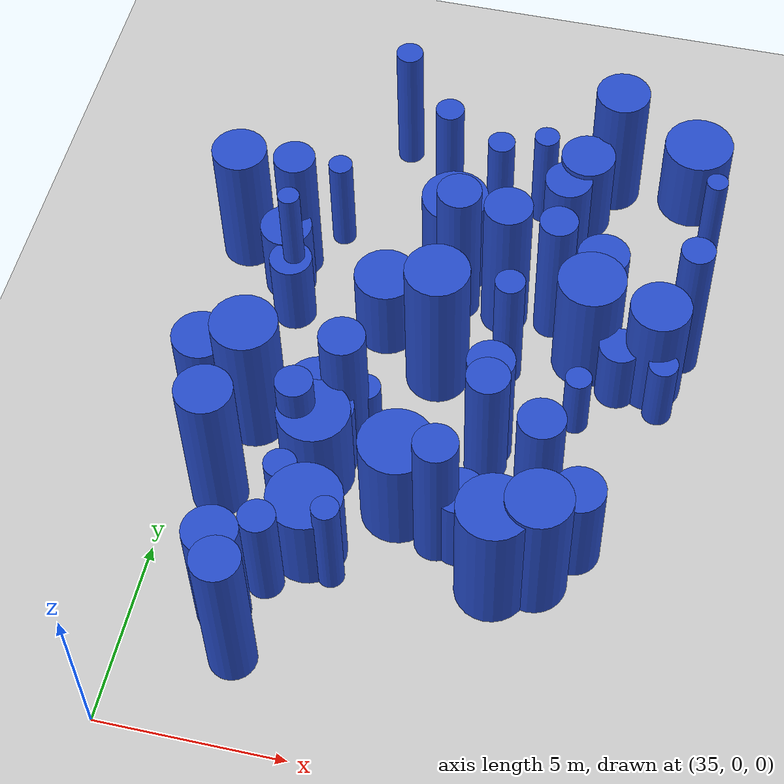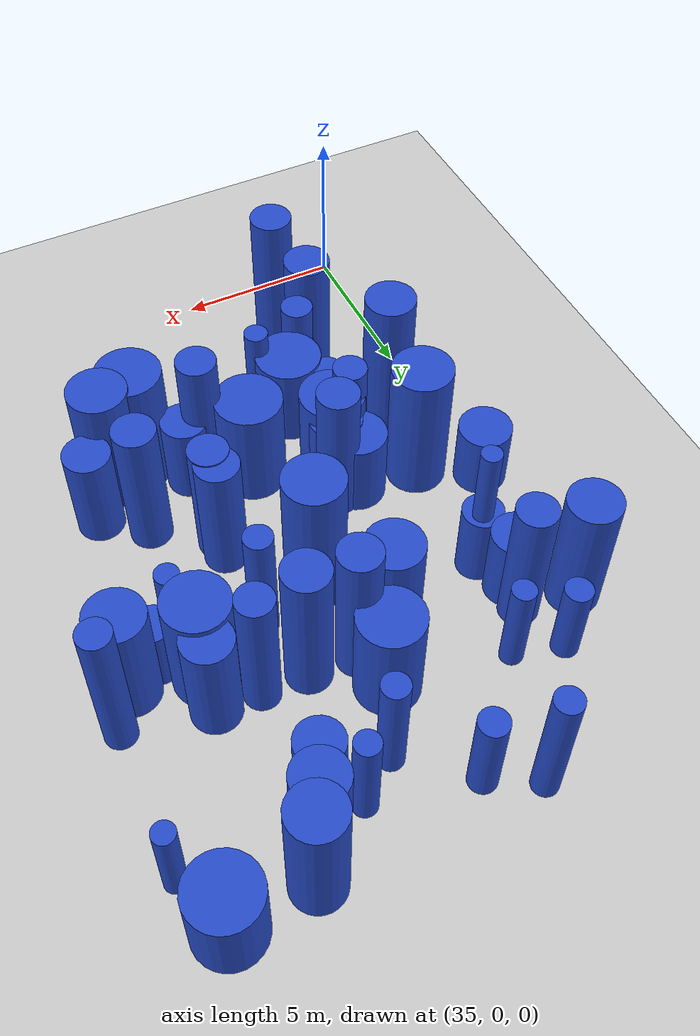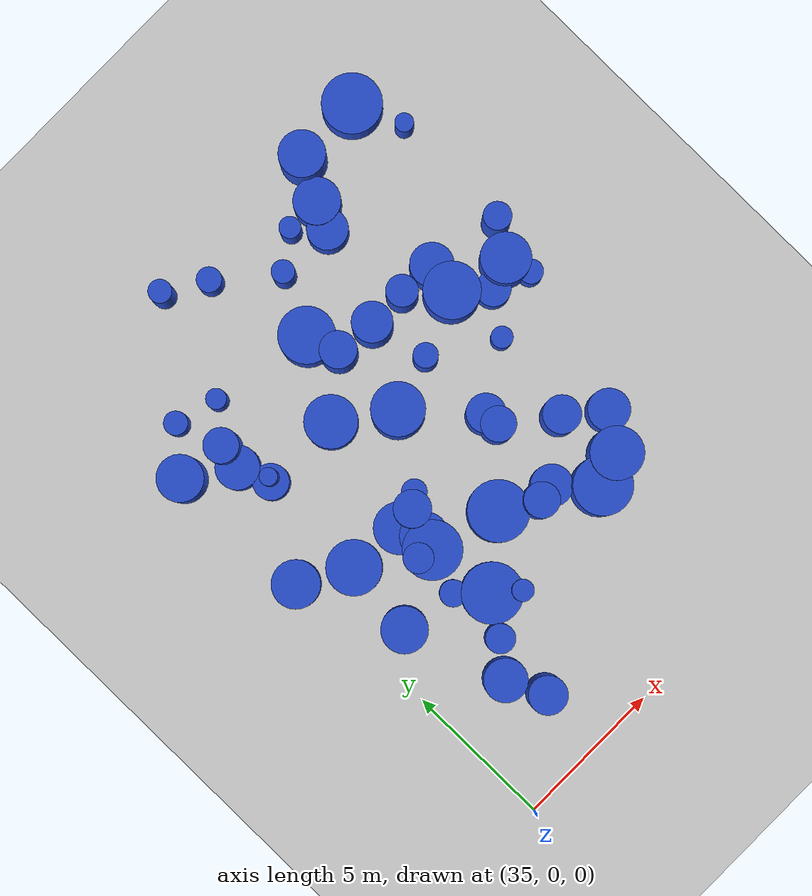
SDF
<sdf version="1.6">
 <world name="default">
  <model name="ground_plane">
   <static>1</static>
   <link name="link">
    <collision name="collision">
     <geometry><plane><normal>0 0 1</normal><size>100 100</size></plane></geometry>
     <surface><friction><ode><mu>100</mu><mu2>50</mu2></ode></friction></surface>
    </collision>
    <visual name="visual">
     <cast_shadows>0</cast_shadows>
     <geometry><plane><normal>0 0 1</normal><size>100 100</size></plane></geometry>
     <material>
      <script><uri>file://media/materials/scripts/gazebo.material</uri><name>Gazebo/Grey</name></script>
     </material>
    </visual>
   </link>
  </model>
  <model name="9">
   <static>0</static>
   <link name="link">
    <inertial>
     <mass>2</mass>
     <inertia><ixx>1.27297</ixx><ixy>0</ixy><ixz>0</ixz><iyy>1.27297</iyy><iyz>0</iyz><izz>0.516849</izz></inertia>
    </inertial>
    <collision name="collision">
     <geometry><cylinder><length>2.46725</length><radius>0.718922</radius></cylinder></geometry>
     <surface><contact><collide_without_contact>1</collide_without_contact></contact></surface>
    </collision>
    <visual name="visual">
     <geometry><cylinder><length>2.46725</length><radius>0.718922</radius></cylinder></geometry>
     <material>
      <script><uri>file://media/materials/scripts/gazebo.material</uri><name>Gazebo/Blue</name></script>
     </material>
    </visual>
    <gravity>0</gravity>
   </link>
   <pose>36.1886 14.3863 1.23362 0 -0 0</pose>
  </model>
  <model name="14">
   <static>0</static>
   <link name="link">
    <inertial>
     <mass>2</mass>
     <inertia><ixx>2.91047</ixx><ixy>0</ixy><ixz>0</ixz><iyy>2.91047</iyy><iyz>0</iyz><izz>0.499162</izz></inertia>
    </inertial>
    <collision name="collision">
     <geometry><cylinder><length>3.99567</length><radius>0.706514</radius></cylinder></geometry>
     <surface><contact><collide_without_contact>1</collide_without_contact></contact></surface>
    </collision>
    <visual name="visual">
     <geometry><cylinder><length>3.99567</length><radius>0.706514</radius></cylinder></geometry>
     <material>
      <script><uri>file://media/materials/scripts/gazebo.material</uri><name>Gazebo/Blue</name></script>
     </material>
    </visual>
    <gravity>0</gravity>
   </link>
   <pose>37.3368 3.64907 1.99783 0 -0 0</pose>
  </model>
  <model name="22">
   <static>0</static>
   <link name="link">
    <inertial>
     <mass>2</mass>
     <inertia><ixx>1.57924</ixx><ixy>0</ixy><ixz>0</ixz><iyy>1.57924</iyy><iyz>0</iyz><izz>0.59029</izz></inertia>
    </inertial>
    <collision name="collision">
     <geometry><cylinder><length>2.77571</length><radius>0.768303</radius></cylinder></geometry>
     <surface><contact><collide_without_contact>1</collide_without_contact></contact></surface>
    </collision>
    <visual name="visual">
     <geometry><cylinder><length>2.77571</length><radius>0.768303</radius></cylinder></geometry>
     <material>
      <script><uri>file://media/materials/scripts/gazebo.material</uri><name>Gazebo/Blue</name></script>
     </material>
    </visual>
    <gravity>0</gravity>
   </link>
   <pose>43.9591 18.4852 1.38785 0 -0 0</pose>
  </model>
  <model name="37">
   <static>0</static>
   <link name="link">
    <inertial>
     <mass>2</mass>
     <inertia><ixx>1.40064</ixx><ixy>0</ixy><ixz>0</ixz><iyy>1.40064</iyy><iyz>0</iyz><izz>0.715011</izz></inertia>
    </inertial>
    <collision name="collision">
     <geometry><cylinder><length>2.50176</length><radius>0.845583</radius></cylinder></geometry>
     <surface><contact><collide_without_contact>1</collide_without_contact></contact></surface>
    </collision>
    <visual name="visual">
     <geometry><cylinder><length>2.50176</length><radius>0.845583</radius></cylinder></geometry>
     <material>
      <script><uri>file://media/materials/scripts/gazebo.material</uri><name>Gazebo/Blue</name></script>
     </material>
    </visual>
    <gravity>0</gravity>
   </link>
   <pose>38.4172 9.37247 1.25088 0 -0 0</pose>
  </model>
  <model name="43">
   <static>0</static>
   <link name="link">
    <inertial>
     <mass>2</mass>
     <inertia><ixx>1.8726</ixx><ixy>0</ixy><ixz>0</ixz><iyy>1.8726</iyy><iyz>0</iyz><izz>0.124585</izz></inertia>
    </inertial>
    <collision name="collision">
     <geometry><cylinder><length>3.29574</length><radius>0.352966</radius></cylinder></geometry>
     <surface><contact><collide_without_contact>1</collide_without_contact></contact></surface>
    </collision>
    <visual name="visual">
     <geometry><cylinder><length>3.29574</length><radius>0.352966</radius></cylinder></geometry>
     <material>
      <script><uri>file://media/materials/scripts/gazebo.material</uri><name>Gazebo/Blue</name></script>
     </material>
    </visual>
    <gravity>0</gravity>
   </link>
   <pose>42.7488 18.4765 1.64787 0 -0 0</pose>
  </model>
  <model name="56">
   <static>0</static>
   <link name="link">
    <inertial>
     <mass>2</mass>
     <inertia><ixx>2.77614</ixx><ixy>0</ixy><ixz>0</ixz><iyy>2.77614</iyy><iyz>0</iyz><izz>0.245795</izz></inertia>
    </inertial>
    <collision name="collision">
     <geometry><cylinder><length>3.98992</length><radius>0.495777</radius></cylinder></geometry>
     <surface><contact><collide_without_contact>1</collide_without_contact></contact></surface>
    </collision>
    <visual name="visual">
     <geometry><cylinder><length>3.98992</length><radius>0.495777</radius></cylinder></geometry>
     <material>
      <script><uri>file://media/materials/scripts/gazebo.material</uri><name>Gazebo/Blue</name></script>
     </material>
    </visual>
    <gravity>0</gravity>
   </link>
   <pose>38.1551 8.28818 1.99496 0 -0 0</pose>
  </model>
  <model name="60">
   <static>0</static>
   <link name="link">
    <inertial>
     <mass>2</mass>
     <inertia><ixx>2.52957</ixx><ixy>0</ixy><ixz>0</ixz><iyy>2.52957</iyy><iyz>0</iyz><izz>0.676676</izz></inertia>
    </inertial>
    <collision name="collision">
     <geometry><cylinder><length>3.62593</length><radius>0.822603</radius></cylinder></geometry>
     <surface><contact><collide_without_contact>1</collide_without_contact></contact></surface>
    </collision>
    <visual name="visual">
     <geometry><cylinder><length>3.62593</length><radius>0.822603</radius></cylinder></geometry>
     <material>
      <script><uri>file://media/materials/scripts/gazebo.material</uri><name>Gazebo/Blue</name></script>
     </material>
    </visual>
    <gravity>0</gravity>
   </link>
   <pose>46.8205 12.9395 1.81297 0 -0 0</pose>
  </model>
  <model name="84">
   <static>0</static>
   <link name="link">
    <inertial>
     <mass>2</mass>
     <inertia><ixx>1.40467</ixx><ixy>0</ixy><ixz>0</ixz><iyy>1.40467</iyy><iyz>0</iyz><izz>0.752602</izz></inertia>
    </inertial>
    <collision name="collision">
     <geometry><cylinder><length>2.484</length><radius>0.867526</radius></cylinder></geometry>
     <surface><contact><collide_without_contact>1</collide_without_contact></contact></surface>
    </collision>
    <visual name="visual">
     <geometry><cylinder><length>2.484</length><radius>0.867526</radius></cylinder></geometry>
     <material>
      <script><uri>file://media/materials/scripts/gazebo.material</uri><name>Gazebo/Blue</name></script>
     </material>
    </visual>
    <gravity>0</gravity>
   </link>
   <pose>39.2948 13.2887 1.242 0 -0 0</pose>
  </model>
  <model name="85">
   <static>0</static>
   <link name="link">
    <inertial>
     <mass>2</mass>
     <inertia><ixx>3.49017</ixx><ixy>0</ixy><ixz>0</ixz><iyy>3.49017</iyy><iyz>0</iyz><izz>0.329145</izz></inertia>
    </inertial>
    <collision name="collision">
     <geometry><cylinder><length>4.46694</length><radius>0.573711</radius></cylinder></geometry>
     <surface><contact><collide_without_contact>1</collide_without_contact></contact></surface>
    </collision>
    <visual name="visual">
     <geometry><cylinder><length>4.46694</length><radius>0.573711</radius></cylinder></geometry>
     <material>
      <script><uri>file://media/materials/scripts/gazebo.material</uri><name>Gazebo/Blue</name></script>
     </material>
    </visual>
    <gravity>0</gravity>
   </link>
   <pose>36.3377 15.1662 2.23347 0 -0 0</pose>
  </model>
  <model name="87">
   <static>0</static>
   <link name="link">
    <inertial>
     <mass>2</mass>
     <inertia><ixx>3.67503</ixx><ixy>0</ixy><ixz>0</ixz><iyy>3.67503</iyy><iyz>0</iyz><izz>0.375093</izz></inertia>
    </inertial>
    <collision name="collision">
     <geometry><cylinder><length>4.57438</length><radius>0.612449</radius></cylinder></geometry>
     <surface><contact><collide_without_contact>1</collide_without_contact></contact></surface>
    </collision>
    <visual name="visual">
     <geometry><cylinder><length>4.57438</length><radius>0.612449</radius></cylinder></geometry>
     <material>
      <script><uri>file://media/materials/scripts/gazebo.material</uri><name>Gazebo/Blue</name></script>
     </material>
    </visual>
    <gravity>0</gravity>
   </link>
   <pose>39.1185 9.50493 2.28719 0 -0 0</pose>
  </model>
  <model name="92">
   <static>0</static>
   <link name="link">
    <inertial>
     <mass>2</mass>
     <inertia><ixx>1.49245</ixx><ixy>0</ixy><ixz>0</ixz><iyy>1.49245</iyy><iyz>0</iyz><izz>0.959766</izz></inertia>
    </inertial>
    <collision name="collision">
     <geometry><cylinder><length>2.46483</length><radius>0.979676</radius></cylinder></geometry>
     <surface><contact><collide_without_contact>1</collide_without_contact></contact></surface>
    </collision>
    <visual name="visual">
     <geometry><cylinder><length>2.46483</length><radius>0.979676</radius></cylinder></geometry>
     <material>
      <script><uri>file://media/materials/scripts/gazebo.material</uri><name>Gazebo/Blue</name></script>
     </material>
    </visual>
    <gravity>0</gravity>
   </link>
   <pose>46.9538 19.8742 1.23241 0 -0 0</pose>
  </model>
  <model name="120">
   <static>0</static>
   <link name="link">
    <inertial>
     <mass>2</mass>
     <inertia><ixx>4.10675</ixx><ixy>0</ixy><ixz>0</ixz><iyy>4.10675</iyy><iyz>0</iyz><izz>0.365101</izz></inertia>
    </inertial>
    <collision name="collision">
     <geometry><cylinder><length>4.85234</length><radius>0.604236</radius></cylinder></geometry>
     <surface><contact><collide_without_contact>1</collide_without_contact></contact></surface>
    </collision>
    <visual name="visual">
     <geometry><cylinder><length>4.85234</length><radius>0.604236</radius></cylinder></geometry>
     <material>
      <script><uri>file://media/materials/scripts/gazebo.material</uri><name>Gazebo/Blue</name></script>
     </material>
    </visual>
    <gravity>0</gravity>
   </link>
   <pose>41.0366 14.6393 2.42617 0 -0 0</pose>
  </model>
  <model name="147">
   <static>0</static>
   <link name="link">
    <inertial>
     <mass>2</mass>
     <inertia>
      <ixx>0.898781</ixx>
      <ixy>0</ixy>
      <ixz>0</ixz>
      <iyy>0.898781</iyy>
      <iyz>0</iyz>
      <izz>0.140183</izz>
     </inertia>
    </inertial>
    <collision name="collision">
     <geometry><cylinder><length>2.22983</length><radius>0.37441</radius></cylinder></geometry>
     <surface><contact><collide_without_contact>1</collide_without_contact></contact></surface>
    </collision>
    <visual name="visual">
     <geometry><cylinder><length>2.22983</length><radius>0.37441</radius></cylinder></geometry>
     <material>
      <script><uri>file://media/materials/scripts/gazebo.material</uri><name>Gazebo/Blue</name></script>
     </material>
    </visual>
    <gravity>0</gravity>
   </link>
   <pose>41.1789 14.6443 1.11491 0 -0 0</pose>
  </model>
  <model name="149">
   <static>0</static>
   <link name="link">
    <inertial>
     <mass>2</mass>
     <inertia><ixx>3.46945</ixx><ixy>0</ixy><ixz>0</ixz><iyy>3.46945</iyy><iyz>0</iyz><izz>0.384951</izz></inertia>
    </inertial>
    <collision name="collision">
     <geometry><cylinder><length>4.43417</length><radius>0.620444</radius></cylinder></geometry>
     <surface><contact><collide_without_contact>1</collide_without_contact></contact></surface>
    </collision>
    <visual name="visual">
     <geometry><cylinder><length>4.43417</length><radius>0.620444</radius></cylinder></geometry>
     <material>
      <script><uri>file://media/materials/scripts/gazebo.material</uri><name>Gazebo/Blue</name></script>
     </material>
    </visual>
    <gravity>0</gravity>
   </link>
   <pose>44.509 8.23323 2.21708 0 -0 0</pose>
  </model>
  <model name="156">
   <static>0</static>
   <link name="link">
    <inertial>
     <mass>2</mass>
     <inertia><ixx>0.7634</ixx><ixy>0</ixy><ixz>0</ixz><iyy>0.7634</iyy><iyz>0</iyz><izz>0.172524</izz></inertia>
    </inertial>
    <collision name="collision">
     <geometry><cylinder><length>2.01565</length><radius>0.41536</radius></cylinder></geometry>
     <surface><contact><collide_without_contact>1</collide_without_contact></contact></surface>
    </collision>
    <visual name="visual">
     <geometry><cylinder><length>2.01565</length><radius>0.41536</radius></cylinder></geometry>
     <material>
      <script><uri>file://media/materials/scripts/gazebo.material</uri><name>Gazebo/Blue</name></script>
     </material>
    </visual>
    <gravity>0</gravity>
   </link>
   <pose>39.5638 9.85322 1.00782 0 -0 0</pose>
  </model>
  <model name="165">
   <static>0</static>
   <link name="link">
    <inertial>
     <mass>2</mass>
     <inertia><ixx>1.39954</ixx><ixy>0</ixy><ixz>0</ixz><iyy>1.39954</iyy><iyz>0</iyz><izz>0.624955</izz></inertia>
    </inertial>
    <collision name="collision">
     <geometry><cylinder><length>2.55389</length><radius>0.790541</radius></cylinder></geometry>
     <surface><contact><collide_without_contact>1</collide_without_contact></contact></surface>
    </collision>
    <visual name="visual">
     <geometry><cylinder><length>2.55389</length><radius>0.790541</radius></cylinder></geometry>
     <material>
      <script><uri>file://media/materials/scripts/gazebo.material</uri><name>Gazebo/Blue</name></script>
     </material>
    </visual>
    <gravity>0</gravity>
   </link>
   <pose>38.7771 8.64627 1.27694 0 -0 0</pose>
  </model>
  <model name="167">
   <static>0</static>
   <link name="link">
    <inertial>
     <mass>2</mass>
     <inertia><ixx>1.80978</ixx><ixy>0</ixy><ixz>0</ixz><iyy>1.80978</iyy><iyz>0</iyz><izz>0.471564</izz></inertia>
    </inertial>
    <collision name="collision">
     <geometry><cylinder><length>3.07311</length><radius>0.686705</radius></cylinder></geometry>
     <surface><contact><collide_without_contact>1</collide_without_contact></contact></surface>
    </collision>
    <visual name="visual">
     <geometry><cylinder><length>3.07311</length><radius>0.686705</radius></cylinder></geometry>
     <material>
      <script><uri>file://media/materials/scripts/gazebo.material</uri><name>Gazebo/Blue</name></script>
     </material>
    </visual>
    <gravity>0</gravity>
   </link>
   <pose>45.7058 7.27517 1.53655 0 -0 0</pose>
  </model>
  <model name="171">
   <static>0</static>
   <link name="link">
    <inertial>
     <mass>2</mass>
     <inertia><ixx>1.92743</ixx><ixy>0</ixy><ixz>0</ixz><iyy>1.92743</iyy><iyz>0</iyz><izz>0.23324</izz></inertia>
    </inertial>
    <collision name="collision">
     <geometry><cylinder><length>3.29618</length><radius>0.48295</radius></cylinder></geometry>
     <surface><contact><collide_without_contact>1</collide_without_contact></contact></surface>
    </collision>
    <visual name="visual">
     <geometry><cylinder><length>3.29618</length><radius>0.48295</radius></cylinder></geometry>
     <material>
      <script><uri>file://media/materials/scripts/gazebo.material</uri><name>Gazebo/Blue</name></script>
     </material>
    </visual>
    <gravity>0</gravity>
   </link>
   <pose>38.1547 4.66756 1.64809 0 -0 0</pose>
  </model>
  <model name="189">
   <static>0</static>
   <link name="link">
    <inertial>
     <mass>2</mass>
     <inertia><ixx>1.59975</ixx><ixy>0</ixy><ixz>0</ixz><iyy>1.59975</iyy><iyz>0</iyz><izz>0.168342</izz></inertia>
    </inertial>
    <collision name="collision">
     <geometry><cylinder><length>3.01554</length><radius>0.410295</radius></cylinder></geometry>
     <surface><contact><collide_without_contact>1</collide_without_contact></contact></surface>
    </collision>
    <visual name="visual">
     <geometry><cylinder><length>3.01554</length><radius>0.410295</radius></cylinder></geometry>
     <material>
      <script><uri>file://media/materials/scripts/gazebo.material</uri><name>Gazebo/Blue</name></script>
     </material>
    </visual>
    <gravity>0</gravity>
   </link>
   <pose>39.7948 19.1589 1.50777 0 -0 0</pose>
  </model>
  <model name="202">
   <static>0</static>
   <link name="link">
    <inertial>
     <mass>2</mass>
     <inertia><ixx>2.78119</ixx><ixy>0</ixy><ixz>0</ixz><iyy>2.78119</iyy><iyz>0</iyz><izz>0.165507</izz></inertia>
    </inertial>
    <collision name="collision">
     <geometry><cylinder><length>4.02376</length><radius>0.406826</radius></cylinder></geometry>
     <surface><contact><collide_without_contact>1</collide_without_contact></contact></surface>
    </collision>
    <visual name="visual">
     <geometry><cylinder><length>4.02376</length><radius>0.406826</radius></cylinder></geometry>
     <material>
      <script><uri>file://media/materials/scripts/gazebo.material</uri><name>Gazebo/Blue</name></script>
     </material>
    </visual>
    <gravity>0</gravity>
   </link>
   <pose>42.8502 12.5808 2.01188 0 -0 0</pose>
  </model>
  <model name="207">
   <static>0</static>
   <link name="link">
    <inertial>
     <mass>2</mass>
     <inertia><ixx>1.66216</ixx><ixy>0</ixy><ixz>0</ixz><iyy>1.66216</iyy><iyz>0</iyz><izz>0.113029</izz></inertia>
    </inertial>
    <collision name="collision">
     <geometry><cylinder><length>3.10385</length><radius>0.336198</radius></cylinder></geometry>
     <surface><contact><collide_without_contact>1</collide_without_contact></contact></surface>
    </collision>
    <visual name="visual">
     <geometry><cylinder><length>3.10385</length><radius>0.336198</radius></cylinder></geometry>
     <material>
      <script><uri>file://media/materials/scripts/gazebo.material</uri><name>Gazebo/Blue</name></script>
     </material>
    </visual>
    <gravity>0</gravity>
   </link>
   <pose>37.2672 16.3573 1.55193 0 -0 0</pose>
  </model>
  <model name="220">
   <static>0</static>
   <link name="link">
    <inertial>
     <mass>2</mass>
     <inertia><ixx>3.99113</ixx><ixy>0</ixy><ixz>0</ixz><iyy>3.99113</iyy><iyz>0</iyz><izz>0.208699</izz></inertia>
    </inertial>
    <collision name="collision">
     <geometry><cylinder><length>4.82915</length><radius>0.456835</radius></cylinder></geometry>
     <surface><contact><collide_without_contact>1</collide_without_contact></contact></surface>
    </collision>
    <visual name="visual">
     <geometry><cylinder><length>4.82915</length><radius>0.456835</radius></cylinder></geometry>
     <material>
      <script><uri>file://media/materials/scripts/gazebo.material</uri><name>Gazebo/Blue</name></script>
     </material>
    </visual>
    <gravity>0</gravity>
   </link>
   <pose>47.5131 14.0166 2.41458 0 -0 0</pose>
  </model>
  <model name="242">
   <static>0</static>
   <link name="link">
    <inertial>
     <mass>2</mass>
     <inertia><ixx>2.64765</ixx><ixy>0</ixy><ixz>0</ixz><iyy>2.64765</iyy><iyz>0</iyz><izz>0.859905</izz></inertia>
    </inertial>
    <collision name="collision">
     <geometry><cylinder><length>3.64776</length><radius>0.927311</radius></cylinder></geometry>
     <surface><contact><collide_without_contact>1</collide_without_contact></contact></surface>
    </collision>
    <visual name="visual">
     <geometry><cylinder><length>3.64776</length><radius>0.927311</radius></cylinder></geometry>
     <material>
      <script><uri>file://media/materials/scripts/gazebo.material</uri><name>Gazebo/Blue</name></script>
     </material>
    </visual>
    <gravity>0</gravity>
   </link>
   <pose>44.9013 13.4332 1.82388 0 -0 0</pose>
  </model>
  <model name="244">
   <static>0</static>
   <link name="link">
    <inertial>
     <mass>2</mass>
     <inertia><ixx>1.92516</ixx><ixy>0</ixy><ixz>0</ixz><iyy>1.92516</iyy><iyz>0</iyz><izz>0.128426</izz></inertia>
    </inertial>
    <collision name="collision">
     <geometry><cylinder><length>3.34151</length><radius>0.358366</radius></cylinder></geometry>
     <surface><contact><collide_without_contact>1</collide_without_contact></contact></surface>
    </collision>
    <visual name="visual">
     <geometry><cylinder><length>3.34151</length><radius>0.358366</radius></cylinder></geometry>
     <material>
      <script><uri>file://media/materials/scripts/gazebo.material</uri><name>Gazebo/Blue</name></script>
     </material>
    </visual>
    <gravity>0</gravity>
   </link>
   <pose>39.7357 5.22816 1.67076 0 -0 0</pose>
  </model>
  <model name="248">
   <static>0</static>
   <link name="link">
    <inertial>
     <mass>2</mass>
     <inertia><ixx>1.68618</ixx><ixy>0</ixy><ixz>0</ixz><iyy>1.68618</iyy><iyz>0</iyz><izz>0.992082</izz></inertia>
    </inertial>
    <collision name="collision">
     <geometry><cylinder><length>2.67223</length><radius>0.996033</radius></cylinder></geometry>
     <surface><contact><collide_without_contact>1</collide_without_contact></contact></surface>
    </collision>
    <visual name="visual">
     <geometry><cylinder><length>2.67223</length><radius>0.996033</radius></cylinder></geometry>
     <material>
      <script><uri>file://media/materials/scripts/gazebo.material</uri><name>Gazebo/Blue</name></script>
     </material>
    </visual>
    <gravity>0</gravity>
   </link>
   <pose>39.0018 5.84855 1.33612 0 -0 0</pose>
  </model>
  <model name="281">
   <static>0</static>
   <link name="link">
    <inertial>
     <mass>2</mass>
     <inertia><ixx>3.16431</ixx><ixy>0</ixy><ixz>0</ixz><iyy>3.16431</iyy><iyz>0</iyz><izz>0.928845</izz></inertia>
    </inertial>
    <collision name="collision">
     <geometry><cylinder><length>4.02484</length><radius>0.963766</radius></cylinder></geometry>
     <surface><contact><collide_without_contact>1</collide_without_contact></contact></surface>
    </collision>
    <visual name="visual">
     <geometry><cylinder><length>4.02484</length><radius>0.963766</radius></cylinder></geometry>
     <material>
      <script><uri>file://media/materials/scripts/gazebo.material</uri><name>Gazebo/Blue</name></script>
     </material>
    </visual>
    <gravity>0</gravity>
   </link>
   <pose>43.8378 5.74918 2.01242 0 -0 0</pose>
  </model>
  <model name="282">
   <static>0</static>
   <link name="link">
    <inertial>
     <mass>2</mass>
     <inertia><ixx>1.36249</ixx><ixy>0</ixy><ixz>0</ixz><iyy>1.36249</iyy><iyz>0</iyz><izz>0.451107</izz></inertia>
    </inertial>
    <collision name="collision">
     <geometry><cylinder><length>2.61182</length><radius>0.671645</radius></cylinder></geometry>
     <surface><contact><collide_without_contact>1</collide_without_contact></contact></surface>
    </collision>
    <visual name="visual">
     <geometry><cylinder><length>2.61182</length><radius>0.671645</radius></cylinder></geometry>
     <material>
      <script><uri>file://media/materials/scripts/gazebo.material</uri><name>Gazebo/Blue</name></script>
     </material>
    </visual>
    <gravity>0</gravity>
   </link>
   <pose>43.563 17.631 1.30591 0 -0 0</pose>
  </model>
  <model name="306">
   <static>0</static>
   <link name="link">
    <inertial>
     <mass>2</mass>
     <inertia>
      <ixx>0.916257</ixx>
      <ixy>0</ixy>
      <ixz>0</ixz>
      <iyy>0.916257</iyy>
      <iyz>0</iyz>
      <izz>0.330285</izz>
     </inertia>
    </inertial>
    <collision name="collision">
     <geometry><cylinder><length>2.1229</length><radius>0.574704</radius></cylinder></geometry>
     <surface><contact><collide_without_contact>1</collide_without_contact></contact></surface>
    </collision>
    <visual name="visual">
     <geometry><cylinder><length>2.1229</length><radius>0.574704</radius></cylinder></geometry>
     <material>
      <script><uri>file://media/materials/scripts/gazebo.material</uri><name>Gazebo/Blue</name></script>
     </material>
    </visual>
    <gravity>0</gravity>
   </link>
   <pose>45.9145 12.5754 1.06145 0 -0 0</pose>
  </model>
  <model name="308">
   <static>0</static>
   <link name="link">
    <inertial>
     <mass>2</mass>
     <inertia><ixx>3.58763</ixx><ixy>0</ixy><ixz>0</ixz><iyy>3.58763</iyy><iyz>0</iyz><izz>0.797732</izz></inertia>
    </inertial>
    <collision name="collision">
     <geometry><cylinder><length>4.37408</length><radius>0.893159</radius></cylinder></geometry>
     <surface><contact><collide_without_contact>1</collide_without_contact></contact></surface>
    </collision>
    <visual name="visual">
     <geometry><cylinder><length>4.37408</length><radius>0.893159</radius></cylinder></geometry>
     <material>
      <script><uri>file://media/materials/scripts/gazebo.material</uri><name>Gazebo/Blue</name></script>
     </material>
    </visual>
    <gravity>0</gravity>
   </link>
   <pose>36.5232 9.51915 2.18704 0 -0 0</pose>
  </model>
  <model name="316">
   <static>0</static>
   <link name="link">
    <inertial>
     <mass>2</mass>
     <inertia><ixx>3.0497</ixx><ixy>0</ixy><ixz>0</ixz><iyy>3.0497</iyy><iyz>0</iyz><izz>0.145419</izz></inertia>
    </inertial>
    <collision name="collision">
     <geometry><cylinder><length>4.22634</length><radius>0.381339</radius></cylinder></geometry>
     <surface><contact><collide_without_contact>1</collide_without_contact></contact></surface>
    </collision>
    <visual name="visual">
     <geometry><cylinder><length>4.22634</length><radius>0.381339</radius></cylinder></geometry>
     <material>
      <script><uri>file://media/materials/scripts/gazebo.material</uri><name>Gazebo/Blue</name></script>
     </material>
    </visual>
    <gravity>0</gravity>
   </link>
   <pose>38.4422 19.9298 2.11317 0 -0 0</pose>
  </model>
  <model name="324">
   <static>0</static>
   <link name="link">
    <inertial>
     <mass>2</mass>
     <inertia><ixx>3.22831</ixx><ixy>0</ixy><ixz>0</ixz><iyy>3.22831</iyy><iyz>0</iyz><izz>0.751665</izz></inertia>
    </inertial>
    <collision name="collision">
     <geometry><cylinder><length>4.13701</length><radius>0.866986</radius></cylinder></geometry>
     <surface><contact><collide_without_contact>1</collide_without_contact></contact></surface>
    </collision>
    <visual name="visual">
     <geometry><cylinder><length>4.13701</length><radius>0.866986</radius></cylinder></geometry>
     <material>
      <script><uri>file://media/materials/scripts/gazebo.material</uri><name>Gazebo/Blue</name></script>
     </material>
    </visual>
    <gravity>0</gravity>
   </link>
   <pose>44.8669 6.14786 2.06851 0 -0 0</pose>
  </model>
  <model name="329">
   <static>0</static>
   <link name="link">
    <inertial>
     <mass>2</mass>
     <inertia><ixx>4.07386</ixx><ixy>0</ixy><ixz>0</ixz><iyy>4.07386</iyy><iyz>0</iyz><izz>0.758874</izz></inertia>
    </inertial>
    <collision name="collision">
     <geometry><cylinder><length>4.70813</length><radius>0.871134</radius></cylinder></geometry>
     <surface><contact><collide_without_contact>1</collide_without_contact></contact></surface>
    </collision>
    <visual name="visual">
     <geometry><cylinder><length>4.70813</length><radius>0.871134</radius></cylinder></geometry>
     <material>
      <script><uri>file://media/materials/scripts/gazebo.material</uri><name>Gazebo/Blue</name></script>
     </material>
    </visual>
    <gravity>0</gravity>
   </link>
   <pose>41.0262 12.006 2.35407 0 -0 0</pose>
  </model>
  <model name="331">
   <static>0</static>
   <link name="link">
    <inertial>
     <mass>2</mass>
     <inertia>
      <ixx>1.39199</ixx>
      <ixy>0</ixy>
      <ixz>0</ixz>
      <iyy>1.39199</iyy>
      <iyz>0</iyz>
      <izz>0.0937266</izz>
     </inertia>
    </inertial>
    <collision name="collision">
     <geometry><cylinder><length>2.8409</length><radius>0.306148</radius></cylinder></geometry>
     <surface><contact><collide_without_contact>1</collide_without_contact></contact></surface>
    </collision>
    <visual name="visual">
     <geometry><cylinder><length>2.8409</length><radius>0.306148</radius></cylinder></geometry>
     <material>
      <script><uri>file://media/materials/scripts/gazebo.material</uri><name>Gazebo/Blue</name></script>
     </material>
    </visual>
    <gravity>0</gravity>
   </link>
   <pose>47.6614 18.2488 1.42045 0 -0 0</pose>
  </model>
  <model name="335">
   <static>0</static>
   <link name="link">
    <inertial>
     <mass>2</mass>
     <inertia><ixx>2.01454</ixx><ixy>0</ixy><ixz>0</ixz><iyy>2.01454</iyy><iyz>0</iyz><izz>0.937485</izz></inertia>
    </inertial>
    <collision name="collision">
     <geometry><cylinder><length>3.04546</length><radius>0.968238</radius></cylinder></geometry>
     <surface><contact><collide_without_contact>1</collide_without_contact></contact></surface>
    </collision>
    <visual name="visual">
     <geometry><cylinder><length>3.04546</length><radius>0.968238</radius></cylinder></geometry>
     <material>
      <script><uri>file://media/materials/scripts/gazebo.material</uri><name>Gazebo/Blue</name></script>
     </material>
    </visual>
    <gravity>0</gravity>
   </link>
   <pose>38.6449 8.15077 1.52273 0 -0 0</pose>
  </model>
  <model name="337">
   <static>0</static>
   <link name="link">
    <inertial>
     <mass>2</mass>
     <inertia><ixx>1.29773</ixx><ixy>0</ixy><ixz>0</ixz><iyy>1.29773</iyy><iyz>0</iyz><izz>0.151781</izz></inertia>
    </inertial>
    <collision name="collision">
     <geometry><cylinder><length>2.70759</length><radius>0.389591</radius></cylinder></geometry>
     <surface><contact><collide_without_contact>1</collide_without_contact></contact></surface>
    </collision>
    <visual name="visual">
     <geometry><cylinder><length>2.70759</length><radius>0.389591</radius></cylinder></geometry>
     <material>
      <script><uri>file://media/materials/scripts/gazebo.material</uri><name>Gazebo/Blue</name></script>
     </material>
    </visual>
    <gravity>0</gravity>
   </link>
   <pose>35.8242 16.7486 1.35379 0 -0 0</pose>
  </model>
  <model name="339">
   <static>0</static>
   <link name="link">
    <inertial>
     <mass>2</mass>
     <inertia>
      <ixx>0.807766</ixx>
      <ixy>0</ixy>
      <ixz>0</ixz>
      <iyy>0.807766</iyy>
      <iyz>0</iyz>
      <izz>0.128072</izz>
     </inertia>
    </inertial>
    <collision name="collision">
     <geometry><cylinder><length>2.11243</length><radius>0.357871</radius></cylinder></geometry>
     <surface><contact><collide_without_contact>1</collide_without_contact></contact></surface>
    </collision>
    <visual name="visual">
     <geometry><cylinder><length>2.11243</length><radius>0.357871</radius></cylinder></geometry>
     <material>
      <script><uri>file://media/materials/scripts/gazebo.material</uri><name>Gazebo/Blue</name></script>
     </material>
    </visual>
    <gravity>0</gravity>
   </link>
   <pose>45.0096 11.2987 1.05622 0 -0 0</pose>
  </model>
  <model name="359">
   <static>0</static>
   <link name="link">
    <inertial>
     <mass>2</mass>
     <inertia><ixx>2.26726</ixx><ixy>0</ixy><ixz>0</ixz><iyy>2.26726</iyy><iyz>0</iyz><izz>0.852423</izz></inertia>
    </inertial>
    <collision name="collision">
     <geometry><cylinder><length>3.3236</length><radius>0.923268</radius></cylinder></geometry>
     <surface><contact><collide_without_contact>1</collide_without_contact></contact></surface>
    </collision>
    <visual name="visual">
     <geometry><cylinder><length>3.3236</length><radius>0.923268</radius></cylinder></geometry>
     <material>
      <script><uri>file://media/materials/scripts/gazebo.material</uri><name>Gazebo/Blue</name></script>
     </material>
    </visual>
    <gravity>0</gravity>
   </link>
   <pose>40.6971 15.7209 1.6618 0 -0 0</pose>
  </model>
  <model name="366">
   <static>0</static>
   <link name="link">
    <inertial>
     <mass>2</mass>
     <inertia><ixx>2.27518</ixx><ixy>0</ixy><ixz>0</ixz><iyy>2.27518</iyy><iyz>0</iyz><izz>0.505679</izz></inertia>
    </inertial>
    <collision name="collision">
     <geometry><cylinder><length>3.48339</length><radius>0.711111</radius></cylinder></geometry>
     <surface><contact><collide_without_contact>1</collide_without_contact></contact></surface>
    </collision>
    <visual name="visual">
     <geometry><cylinder><length>3.48339</length><radius>0.711111</radius></cylinder></geometry>
     <material>
      <script><uri>file://media/materials/scripts/gazebo.material</uri><name>Gazebo/Blue</name></script>
     </material>
    </visual>
    <gravity>0</gravity>
   </link>
   <pose>45.0405 14.4544 1.7417 0 -0 0</pose>
  </model>
  <model name="376">
   <static>0</static>
   <link name="link">
    <inertial>
     <mass>2</mass>
     <inertia>
      <ixx>4.11778</ixx>
      <ixy>0</ixy>
      <ixz>0</ixz>
      <iyy>4.11778</iyy>
      <iyz>0</iyz>
      <izz>0.0851327</izz>
     </inertia>
    </inertial>
    <collision name="collision">
     <geometry><cylinder><length>4.94482</length><radius>0.291775</radius></cylinder></geometry>
     <surface><contact><collide_without_contact>1</collide_without_contact></contact></surface>
    </collision>
    <visual name="visual">
     <geometry><cylinder><length>4.94482</length><radius>0.291775</radius></cylinder></geometry>
     <material>
      <script><uri>file://media/materials/scripts/gazebo.material</uri><name>Gazebo/Blue</name></script>
     </material>
    </visual>
    <gravity>0</gravity>
   </link>
   <pose>36.6846 13.4133 2.47241 0 -0 0</pose>
  </model>
  <model name="380">
   <static>0</static>
   <link name="link">
    <inertial>
     <mass>2</mass>
     <inertia><ixx>3.98374</ixx><ixy>0</ixy><ixz>0</ixz><iyy>3.98374</iyy><iyz>0</iyz><izz>0.436048</izz></inertia>
    </inertial>
    <collision name="collision">
     <geometry><cylinder><length>4.75334</length><radius>0.660339</radius></cylinder></geometry>
     <surface><contact><collide_without_contact>1</collide_without_contact></contact></surface>
    </collision>
    <visual name="visual">
     <geometry><cylinder><length>4.75334</length><radius>0.660339</radius></cylinder></geometry>
     <material>
      <script><uri>file://media/materials/scripts/gazebo.material</uri><name>Gazebo/Blue</name></script>
     </material>
    </visual>
    <gravity>0</gravity>
   </link>
   <pose>42.3995 14.4898 2.37667 0 -0 0</pose>
  </model>
  <model name="383">
   <static>0</static>
   <link name="link">
    <inertial>
     <mass>2</mass>
     <inertia><ixx>3.8101</ixx><ixy>0</ixy><ixz>0</ixz><iyy>3.8101</iyy><iyz>0</iyz><izz>0.33867</izz></inertia>
    </inertial>
    <collision name="collision">
     <geometry><cylinder><length>4.67382</length><radius>0.581954</radius></cylinder></geometry>
     <surface><contact><collide_without_contact>1</collide_without_contact></contact></surface>
    </collision>
    <visual name="visual">
     <geometry><cylinder><length>4.67382</length><radius>0.581954</radius></cylinder></geometry>
     <material>
      <script><uri>file://media/materials/scripts/gazebo.material</uri><name>Gazebo/Blue</name></script>
     </material>
    </visual>
    <gravity>0</gravity>
   </link>
   <pose>42.1525 6.80468 2.33691 0 -0 0</pose>
  </model>
  <model name="386">
   <static>0</static>
   <link name="link">
    <inertial>
     <mass>2</mass>
     <inertia><ixx>2.97105</ixx><ixy>0</ixy><ixz>0</ixz><iyy>2.97105</iyy><iyz>0</iyz><izz>0.333026</izz></inertia>
    </inertial>
    <collision name="collision">
     <geometry><cylinder><length>4.1021</length><radius>0.577084</radius></cylinder></geometry>
     <surface><contact><collide_without_contact>1</collide_without_contact></contact></surface>
    </collision>
    <visual name="visual">
     <geometry><cylinder><length>4.1021</length><radius>0.577084</radius></cylinder></geometry>
     <material>
      <script><uri>file://media/materials/scripts/gazebo.material</uri><name>Gazebo/Blue</name></script>
     </material>
    </visual>
    <gravity>0</gravity>
   </link>
   <pose>42.9158 9.44371 2.05105 0 -0 0</pose>
  </model>
  <model name="390">
   <static>0</static>
   <link name="link">
    <inertial>
     <mass>2</mass>
     <inertia>
      <ixx>0.938941</ixx>
      <ixy>0</ixy>
      <ixz>0</ixz>
      <iyy>0.938941</iyy>
      <iyz>0</iyz>
      <izz>0.160606</izz>
     </inertia>
    </inertial>
    <collision name="collision">
     <geometry><cylinder><length>2.26976</length><radius>0.400757</radius></cylinder></geometry>
     <surface><contact><collide_without_contact>1</collide_without_contact></contact></surface>
    </collision>
    <visual name="visual">
     <geometry><cylinder><length>2.26976</length><radius>0.400757</radius></cylinder></geometry>
     <material>
      <script><uri>file://media/materials/scripts/gazebo.material</uri><name>Gazebo/Blue</name></script>
     </material>
    </visual>
    <gravity>0</gravity>
   </link>
   <pose>47.135 12.1025 1.13488 0 -0 0</pose>
  </model>
  <model name="399">
   <static>0</static>
   <link name="link">
    <inertial>
     <mass>2</mass>
     <inertia><ixx>1.05607</ixx><ixy>0</ixy><ixz>0</ixz><iyy>1.05607</iyy><iyz>0</iyz><izz>0.625355</izz></inertia>
    </inertial>
    <collision name="collision">
     <geometry><cylinder><length>2.11195</length><radius>0.790794</radius></cylinder></geometry>
     <surface><contact><collide_without_contact>1</collide_without_contact></contact></surface>
    </collision>
    <visual name="visual">
     <geometry><cylinder><length>2.11195</length><radius>0.790794</radius></cylinder></geometry>
     <material>
      <script><uri>file://media/materials/scripts/gazebo.material</uri><name>Gazebo/Blue</name></script>
     </material>
    </visual>
    <gravity>0</gravity>
   </link>
   <pose>34.8417 10.4784 1.05598 0 -0 0</pose>
  </model>
  <model name="404">
   <static>0</static>
   <link name="link">
    <inertial>
     <mass>2</mass>
     <inertia><ixx>4.29033</ixx><ixy>0</ixy><ixz>0</ixz><iyy>4.29033</iyy><iyz>0</iyz><izz>0.394005</izz></inertia>
    </inertial>
    <collision name="collision">
     <geometry><cylinder><length>4.9558</length><radius>0.627698</radius></cylinder></geometry>
     <surface><contact><collide_without_contact>1</collide_without_contact></contact></surface>
    </collision>
    <visual name="visual">
     <geometry><cylinder><length>4.9558</length><radius>0.627698</radius></cylinder></geometry>
     <material>
      <script><uri>file://media/materials/scripts/gazebo.material</uri><name>Gazebo/Blue</name></script>
     </material>
    </visual>
    <gravity>0</gravity>
   </link>
   <pose>37.9321 2.40427 2.4779 0 -0 0</pose>
  </model>
  <model name="418">
   <static>0</static>
   <link name="link">
    <inertial>
     <mass>2</mass>
     <inertia><ixx>3.15015</ixx><ixy>0</ixy><ixz>0</ixz><iyy>3.15015</iyy><iyz>0</iyz><izz>0.575126</izz></inertia>
    </inertial>
    <collision name="collision">
     <geometry><cylinder><length>4.14434</length><radius>0.758371</radius></cylinder></geometry>
     <surface><contact><collide_without_contact>1</collide_without_contact></contact></surface>
    </collision>
    <visual name="visual">
     <geometry><cylinder><length>4.14434</length><radius>0.758371</radius></cylinder></geometry>
     <material>
      <script><uri>file://media/materials/scripts/gazebo.material</uri><name>Gazebo/Blue</name></script>
     </material>
    </visual>
    <gravity>0</gravity>
   </link>
   <pose>44.6432 19.7854 2.07217 0 -0 0</pose>
  </model>
  <model name="423">
   <static>0</static>
   <link name="link">
    <inertial>
     <mass>2</mass>
     <inertia><ixx>1.19569</ixx><ixy>0</ixy><ixz>0</ixz><iyy>1.19569</iyy><iyz>0</iyz><izz>0.194101</izz></inertia>
    </inertial>
    <collision name="collision">
     <geometry><cylinder><length>2.56745</length><radius>0.440569</radius></cylinder></geometry>
     <surface><contact><collide_without_contact>1</collide_without_contact></contact></surface>
    </collision>
    <visual name="visual">
     <geometry><cylinder><length>2.56745</length><radius>0.440569</radius></cylinder></geometry>
     <material>
      <script><uri>file://media/materials/scripts/gazebo.material</uri><name>Gazebo/Blue</name></script>
     </material>
    </visual>
    <gravity>0</gravity>
   </link>
   <pose>38.1327 6.72105 1.28373 0 -0 0</pose>
  </model>
  <model name="436">
   <static>0</static>
   <link name="link">
    <inertial>
     <mass>2</mass>
     <inertia><ixx>1.16439</ixx><ixy>0</ixy><ixz>0</ixz><iyy>1.16439</iyy><iyz>0</iyz><izz>0.348891</izz></inertia>
    </inertial>
    <collision name="collision">
     <geometry><cylinder><length>2.43715</length><radius>0.59067</radius></cylinder></geometry>
     <surface><contact><collide_without_contact>1</collide_without_contact></contact></surface>
    </collision>
    <visual name="visual">
     <geometry><cylinder><length>2.43715</length><radius>0.59067</radius></cylinder></geometry>
     <material>
      <script><uri>file://media/materials/scripts/gazebo.material</uri><name>Gazebo/Blue</name></script>
     </material>
    </visual>
    <gravity>0</gravity>
   </link>
   <pose>36.6076 13.3089 1.21857 0 -0 0</pose>
  </model>
  <model name="437">
   <static>0</static>
   <link name="link">
    <inertial>
     <mass>2</mass>
     <inertia><ixx>2.94639</ixx><ixy>0</ixy><ixz>0</ixz><iyy>2.94639</iyy><iyz>0</iyz><izz>0.403154</izz></inertia>
    </inertial>
    <collision name="collision">
     <geometry><cylinder><length>4.05819</length><radius>0.634944</radius></cylinder></geometry>
     <surface><contact><collide_without_contact>1</collide_without_contact></contact></surface>
    </collision>
    <visual name="visual">
     <geometry><cylinder><length>4.05819</length><radius>0.634944</radius></cylinder></geometry>
     <material>
      <script><uri>file://media/materials/scripts/gazebo.material</uri><name>Gazebo/Blue</name></script>
     </material>
    </visual>
    <gravity>0</gravity>
   </link>
   <pose>42.8826 9.96109 2.02909 0 -0 0</pose>
  </model>
  <model name="441">
   <static>0</static>
   <link name="link">
    <inertial>
     <mass>2</mass>
     <inertia><ixx>2.33951</ixx><ixy>0</ixy><ixz>0</ixz><iyy>2.33951</iyy><iyz>0</iyz><izz>0.14316</izz></inertia>
    </inertial>
    <collision name="collision">
     <geometry><cylinder><length>3.68884</length><radius>0.378365</radius></cylinder></geometry>
     <surface><contact><collide_without_contact>1</collide_without_contact></contact></surface>
    </collision>
    <visual name="visual">
     <geometry><cylinder><length>3.68884</length><radius>0.378365</radius></cylinder></geometry>
     <material>
      <script><uri>file://media/materials/scripts/gazebo.material</uri><name>Gazebo/Blue</name></script>
     </material>
    </visual>
    <gravity>0</gravity>
   </link>
   <pose>41.5982 17.638 1.84442 0 -0 0</pose>
  </model>
  <model name="471">
   <static>0</static>
   <link name="link">
    <inertial>
     <mass>2</mass>
     <inertia><ixx>3.44343</ixx><ixy>0</ixy><ixz>0</ixz><iyy>3.44343</iyy><iyz>0</iyz><izz>0.271478</izz></inertia>
    </inertial>
    <collision name="collision">
     <geometry><cylinder><length>4.4549</length><radius>0.521035</radius></cylinder></geometry>
     <surface><contact><collide_without_contact>1</collide_without_contact></contact></surface>
    </collision>
    <visual name="visual">
     <geometry><cylinder><length>4.4549</length><radius>0.521035</radius></cylinder></geometry>
     <material>
      <script><uri>file://media/materials/scripts/gazebo.material</uri><name>Gazebo/Blue</name></script>
     </material>
    </visual>
    <gravity>0</gravity>
   </link>
   <pose>43.7658 14.5171 2.22745 0 -0 0</pose>
  </model>
  <model name="474">
   <static>0</static>
   <link name="link">
    <inertial>
     <mass>2</mass>
     <inertia><ixx>4.12347</ixx><ixy>0</ixy><ixz>0</ixz><iyy>4.12347</iyy><iyz>0</iyz><izz>0.565763</izz></inertia>
    </inertial>
    <collision name="collision">
     <geometry><cylinder><length>4.80037</length><radius>0.752172</radius></cylinder></geometry>
     <surface><contact><collide_without_contact>1</collide_without_contact></contact></surface>
    </collision>
    <visual name="visual">
     <geometry><cylinder><length>4.80037</length><radius>0.752172</radius></cylinder></geometry>
     <material>
      <script><uri>file://media/materials/scripts/gazebo.material</uri><name>Gazebo/Blue</name></script>
     </material>
    </visual>
    <gravity>0</gravity>
   </link>
   <pose>36.2454 7.02888 2.40018 0 -0 0</pose>
  </model>
  <model name="488">
   <static>0</static>
   <link name="link">
    <inertial>
     <mass>2</mass>
     <inertia><ixx>1.36673</ixx><ixy>0</ixy><ixz>0</ixz><iyy>1.36673</iyy><iyz>0</iyz><izz>0.470645</izz></inertia>
    </inertial>
    <collision name="collision">
     <geometry><cylinder><length>2.60546</length><radius>0.686036</radius></cylinder></geometry>
     <surface><contact><collide_without_contact>1</collide_without_contact></contact></surface>
    </collision>
    <visual name="visual">
     <geometry><cylinder><length>2.60546</length><radius>0.686036</radius></cylinder></geometry>
     <material>
      <script><uri>file://media/materials/scripts/gazebo.material</uri><name>Gazebo/Blue</name></script>
     </material>
    </visual>
    <gravity>0</gravity>
   </link>
   <pose>42.7474 6.8857 1.30273 0 -0 0</pose>
  </model>
  <model name="493">
   <static>0</static>
   <link name="link">
    <inertial>
     <mass>2</mass>
     <inertia><ixx>3.16667</ixx><ixy>0</ixy><ixz>0</ixz><iyy>3.16667</iyy><iyz>0</iyz><izz>0.577731</izz></inertia>
    </inertial>
    <collision name="collision">
     <geometry><cylinder><length>4.15534</length><radius>0.760086</radius></cylinder></geometry>
     <surface><contact><collide_without_contact>1</collide_without_contact></contact></surface>
    </collision>
    <visual name="visual">
     <geometry><cylinder><length>4.15534</length><radius>0.760086</radius></cylinder></geometry>
     <material>
      <script><uri>file://media/materials/scripts/gazebo.material</uri><name>Gazebo/Blue</name></script>
     </material>
    </visual>
    <gravity>0</gravity>
   </link>
   <pose>34.7015 15.3729 2.07767 0 -0 0</pose>
  </model>
  <model name="498">
   <static>0</static>
   <link name="link">
    <inertial>
     <mass>2</mass>
     <inertia><ixx>2.319</ixx><ixy>0</ixy><ixz>0</ixz><iyy>2.319</iyy><iyz>0</iyz><izz>0.998135</izz></inertia>
    </inertial>
    <collision name="collision">
     <geometry><cylinder><length>3.30448</length><radius>0.999067</radius></cylinder></geometry>
     <surface><contact><collide_without_contact>1</collide_without_contact></contact></surface>
    </collision>
    <visual name="visual">
     <geometry><cylinder><length>3.30448</length><radius>0.999067</radius></cylinder></geometry>
     <material>
      <script><uri>file://media/materials/scripts/gazebo.material</uri><name>Gazebo/Blue</name></script>
     </material>
    </visual>
    <gravity>0</gravity>
   </link>
   <pose>40.9786 7.52589 1.65224 0 -0 0</pose>
  </model>
 </world>
</sdf>
